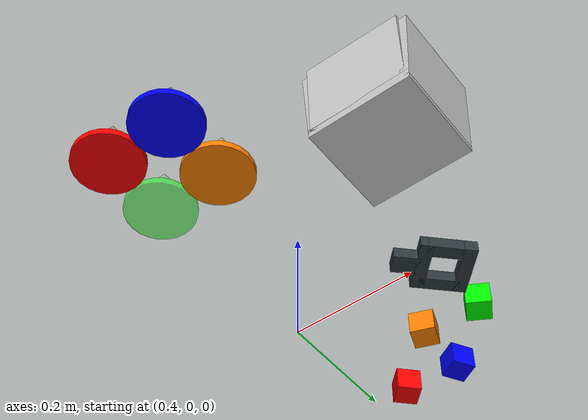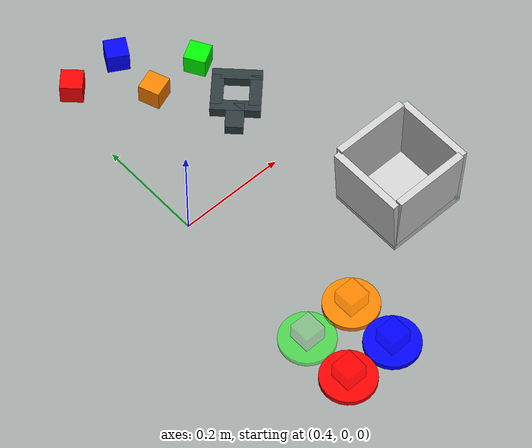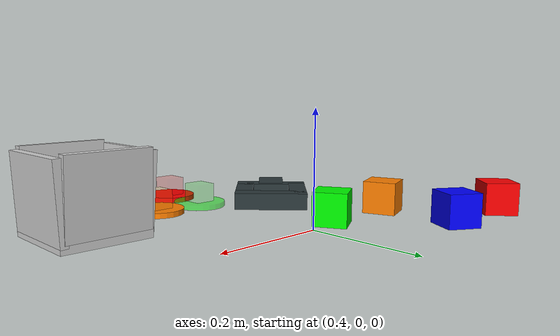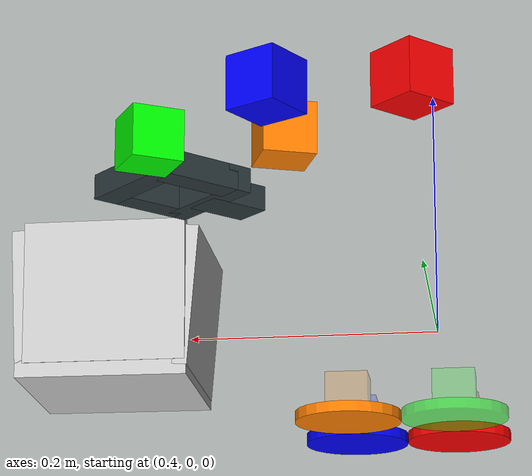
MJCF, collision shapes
<mujoco>
    <asset>
      <texture file="texture.png" name="tex-basket" type="2d" />
      <material name="basket" reflectance="0.5" texrepeat="1 1" texture="tex-basket" texuniform="false" />
      <mesh file="basket_vis.msh" name="basket_vis" scale="1.0 1.0 1.0" />
    </asset>

    <worldbody>
        <body name="red_block" pos="0.4 0.3 0.1" quat="0.942 0 0 -0.383">
            <freejoint/>
            <geom size="0.02 0.02 0.02" rgba="1 0 0 1" type="box" conaffinity="0" contype="0" group="1"/>
            <geom size="0.02 0.02 0.02" type="box" conaffinity="1" condim="4" contype="1" group="4" mass="0.0001" friction="1 0.005 0.0001" solimp="1 1 1" solref="0.00001 1"/>
            <site name="red_block" pos="0 0 0" size="0.02" rgba="1 0 0 0.5" type="sphere" />
        </body>

        <body name="green_block" pos="0.6 0.2 0.1" quat="0.966 0 0 0.259">
            <freejoint/>
            <geom size="0.02 0.02 0.02" rgba="0 1 0 1" type="box" conaffinity="0" contype="0" group="1"/>
            <geom size="0.02 0.02 0.02" type="box" conaffinity="1" contype="1" condim="4" group="4" mass="0.0001" friction="1 0.005 0.0001" solimp="1 1 1" solref="0.00001 1"/>
            <site name="green_block" pos="0 0 0" size="0.02" rgba="0 1 0 0.5" type="sphere" />
        </body>

        <body name="blue_block" pos="0.5 0.3 0.1" quat="0.866 0 0 0.5">
            <freejoint/>
            <geom size="0.02 0.02 0.02" rgba="0 0 1 1" type="box" conaffinity="0" contype="0" group="1"/>
            <geom size="0.02 0.02 0.02" type="box" conaffinity="1" condim="4" contype="1" group="4" mass="0.0001" friction="1 0.005 0.0001" solimp="1 1 1" solref="0.00001 1"/>
            <site name="blue_block" pos="0 0 0" size="0.02" rgba="0 0 1 0.5" type="sphere" />
        </body>

        <body name="orange_block" pos="0.5 0.2 0.1" quat="0.985 0 0 0.174">
            <freejoint/>
            <geom size="0.02 0.02 0.02" rgba="1 0.5 0 1" type="box" conaffinity="0" contype="0" group="1"/>
            <geom size="0.02 0.02 0.02" type="box" conaffinity="1" condim="4" contype="1" group="4" mass="0.0001" friction="1 0.005 0.0001" solimp="1 1 1" solref="0.00001 1"/>
            <site name="orange_block" pos="0 0 0" size="0.02" rgba="1 0.5 0 0.5" type="sphere" />
        </body>

        <body name="square_nut" pos="0.6 0.1 0.1" quat="0.383 0 0 -0.924">
            <freejoint/>
            <geom pos="-0.03325 0 0" size="0.0105 0.04375 0.01" rgba="0.17 0.22 0.23 1" type="box" solimp="0.998 0.998 0.001" solref="0.02 1" density="100" friction="0.95 0.3 0.2" group="0" condim="4"/>
            <geom pos="0.0 0.03325 0" size="0.03125 0.0105 0.01" rgba="0.17 0.22 0.23 1" type="box" solimp="0.998 0.998 0.001" solref="0.02 1" density="100" friction="0.95 0.3 0.1" group="0" condim="4"/>
            <geom pos="0.0 -0.03325 0" size="0.03125 0.0105 0.01" rgba="0.17 0.22 0.23 1" type="box" solimp="0.998 0.998 0.001" solref="0.02 1" density="100" friction="0.95 0.3 0.1" group="0" condim="4"/>
            <geom pos="0.03325 0 0" size="0.0105 0.04375 0.01" rgba="0.17 0.22 0.23 1" type="box" solimp="0.998 0.998 0.001" solref="0.02 1" density="100" friction="0.95 0.3 0.1" group="0" condim="4"/>
            <geom pos="0.054 0 0" size="0.02525 0.015875 0.01" rgba="0.17 0.22 0.23 1" type="box" solimp="0.998 0.998 0.001" solref="0.02 1" density="100" friction="0.95 0.3 0.1" group="0" condim="4"/>
          </body>

        <body name="basket" pos="0.7 -0.2 0">
            <site type="box" pos="-0.00000 -0.00000 0.07185" quat="0.00000 0.00000 0.00000 1.00000" size="0.06108 0.06108 0.06949" group="0" rgba="0.8 0 0 0" name="contain_region"/>
            <geom solimp="0.998 0.998 0.001" solref="0.001 1" density="100" friction="0.95 0.3 0.1" type="mesh" mesh="basket_vis" conaffinity="0" contype="0" group="1" material="basket" />
            <geom solimp="0.998 0.998 0.001" solref="0.001 1" density="100" friction="0.95 0.3 0.1" type="box" pos="0.00251 -0.00000 0.01308" quat="0.70880 -0.00000 0.70541 -0.00000" size="0.00850 0.07240 0.07658" group="0" rgba="0.8 0.8 0.8 0.3" />
            <geom solimp="0.998 0.998 0.001" solref="0.001 1" density="100" friction="0.95 0.3 0.1" type="box" pos="-0.07265 -0.00000 0.07657" quat="0.02672 -0.02672 0.70660 0.70660" size="0.00667 0.06368 0.07240" group="0" rgba="0.8 0.8 0.8 0.3" />
            <geom solimp="0.998 0.998 0.001" solref="0.001 1" density="100" friction="0.95 0.3 0.1" type="box" pos="0.00047 -0.06855 0.08177" quat="0.51263 -0.49025 0.50956 -0.48704" size="0.00667 0.06368 0.07240" group="0" rgba="0.8 0.8 0.8 0.3" />
            <geom solimp="0.998 0.998 0.001" solref="0.001 1" density="100" friction="0.95 0.3 0.1" type="box" pos="-0.00020 0.06909 0.08177" quat="0.48794 -0.51043 -0.48935 0.51177" size="0.00667 0.06368 0.07240" group="0" rgba="0.8 0.8 0.8 0.3" />
            <geom solimp="0.998 0.998 0.001" solref="0.001 1" density="100" friction="0.95 0.3 0.1" type="box" pos="0.07557 0.00000 0.07657" quat="0.01765 0.01765 -0.70689 0.70689" size="0.00667 0.06368 0.07240" group="0" rgba="0.8 0.8 0.8 0.3" />
        </body>

        <body name="red_box" pos="0.4 -0.4 0">
            <geom size="0.05 0.005" rgba="1 0 0 1" type="cylinder" conaffinity="0" contype="0" group="1"/>
            <site pos="0 0 0.02" size="0.02 0.02 0.02" rgba="1 0 0 .2" type="box" />
        </body>

        <body name="green_box" pos="0.4 -0.3 0">
            <geom size="0.05 0.005" rgba="0 1 0 0.5" type="cylinder" conaffinity="0" contype="0" group="1"/>
            <site pos="0 0 0.02" size="0.02 0.02 0.02" rgba="0 1 0 .2" type="box" />
        </body>

        <body name="blue_box" pos="0.5 -0.4 0">
            <geom size="0.05 0.005" rgba="0 0 1 1" type="cylinder" conaffinity="0" contype="0" group="1"/>
            <site pos="0 0 0.02" size="0.02 0.02 0.02" rgba="0 0 1 .2" type="box" />
        </body>

        <body name="orange_box" pos="0.5 -0.3 0">
            <geom size="0.05 0.005" rgba="1 0.5 0 1" type="cylinder" conaffinity="0" contype="0" group="1"/>
            <site pos="0 0 0.02" size="0.02 0.02 0.02" rgba="1 0.5 0 .2" type="box" />
        </body>

    </worldbody>

</mujoco>
